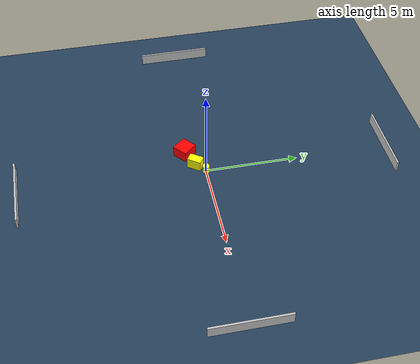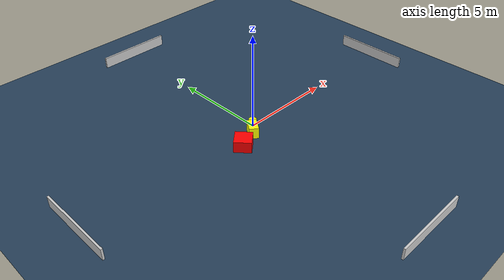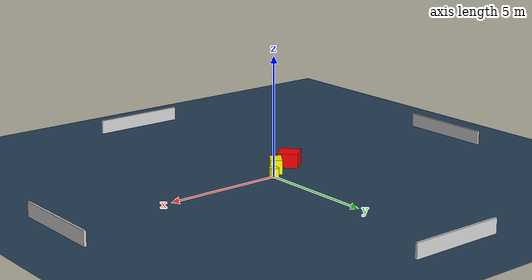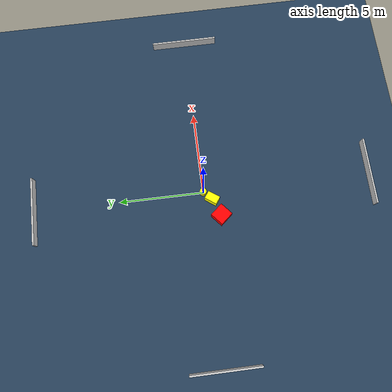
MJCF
<?xml version="1.0" ?>
<mujoco model="generated_environment">
  <option timestep="0.01" integrator="RK4" cone="elliptic"/>
  <default>
    <geom density="1"/>
  </default>
  <asset>
    <texture builtin="gradient" height="3072" name="skybox" rgb1="0.3 0.5 0.7" rgb2="0 0 0" type="skybox" width="512"/>
    <texture builtin="checker" height="300" name="groundplane" rgb1="0.2 0.3 0.4" rgb2="0.1 0.2 0.3" type="2d" width="300"/>
    <material name="groundplane" reflectance="0.2" texrepeat="5 5" texture="groundplane"/>
  </asset>
  <worldbody>
    <light dir="0 0 -1" directional="true" pos="0 0 1.5"/>
    <geom condim="3" friction="0.5 0.005 0.001" material="groundplane" name="floor" pos="0 0 0" size="0 0 0.05" type="plane"/>
    <body name="walls">
      <geom name="wall_1" condim="4" pos="-10.0 0.0 0.3" rgba="0.800000011920929 0.800000011920929 0.800000011920929 1.0" size="0.05 2.0 0.3" type="box"/>
      <geom name="wall_2" condim="4" pos="10.0 0.0 0.3" rgba="0.800000011920929 0.800000011920929 0.800000011920929 1.0" size="0.05 2.0 0.3" type="box"/>
      <geom name="wall_3" condim="4" pos="0.0 -10.0 0.3" rgba="0.800000011920929 0.800000011920929 0.800000011920929 1.0" size="2.0 0.05 0.3" type="box"/>
      <geom name="wall_4" condim="4" pos="0.0 10.0 0.3" rgba="0.800000011920929 0.800000011920929 0.800000011920929 1.0" size="2.0 0.05 0.3" type="box"/>
    </body>
    <body name="robot">
      <joint name="joint_x" type="slide" pos="0 0 0" axis="1 0 0"/>
      <joint name="joint_y" type="slide" pos="0 0 0" axis="0 1 0"/>
      <geom name="robot" type="cylinder" pos="0.0 0.0 0.2" size="0.2 0.2 0.0" mass="5.0" friction="1.0 0.005 0.0001" condim="4" rgba="1.0 1.0 0.0 1.0"/>
    </body>
    <body name="obstacle_1_movable">
      <geom name="obstacle_1_movable" condim="4" pos="-0.48592344698684187 -0.4814319838240814 0.3" euler="0 0 234.61435319641103" friction="0.0 0.005 0.001" rgba="1.0 1.0 0.0 1.0" size="0.380224416442545 0.2429227060646262 0.3" type="box" mass="0.1"/>
      <joint type="free"/>
    </body>
    <body name="obstacle_2_static">
      <geom name="obstacle_2_static" condim="4" pos="-1.5283883737050967 -0.8915378376874349 0.3" euler="0 0 220.49829761401708" friction="0.0 0.005 0.001" rgba="1.0 0.0 0.0 1.0" size="0.42446215824258426 0.4381717403330201 0.3" type="box"/>
    </body>
  </worldbody>
  <actuator>
    <motor name="actuator_x" joint="joint_x" gear="1" ctrlrange="-1 1"/>
    <motor name="actuator_y" joint="joint_y" gear="1" ctrlrange="-1 1"/>
  </actuator>
</mujoco>
